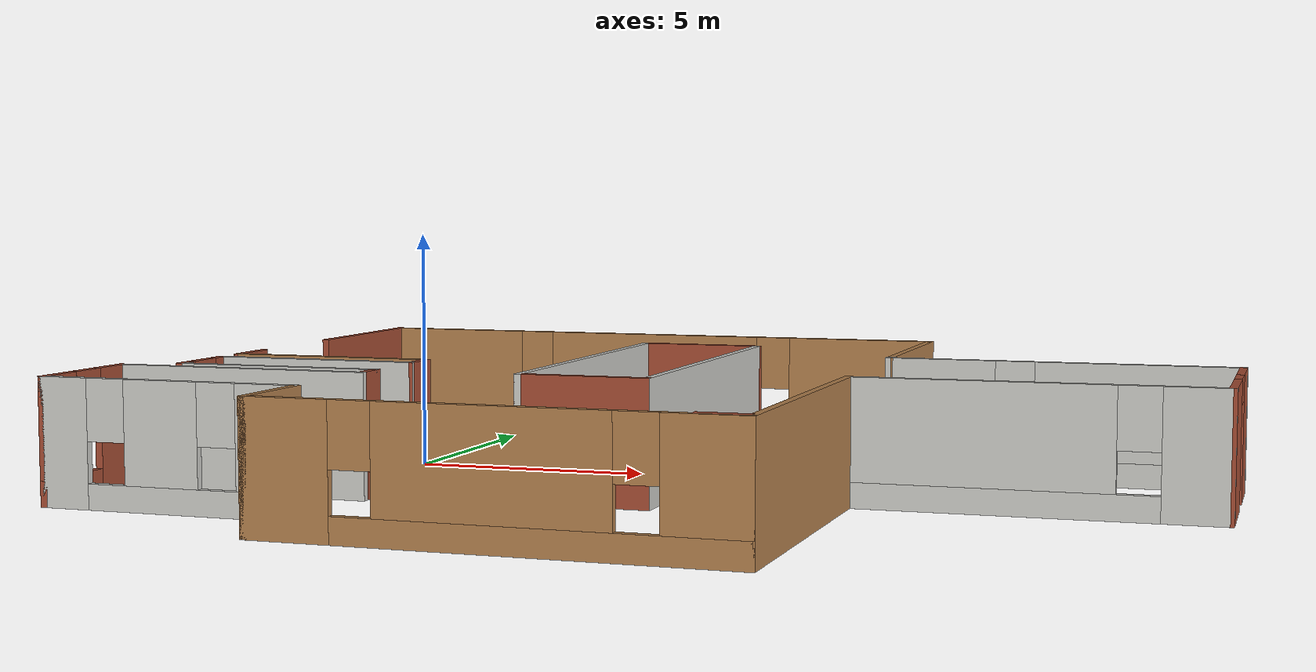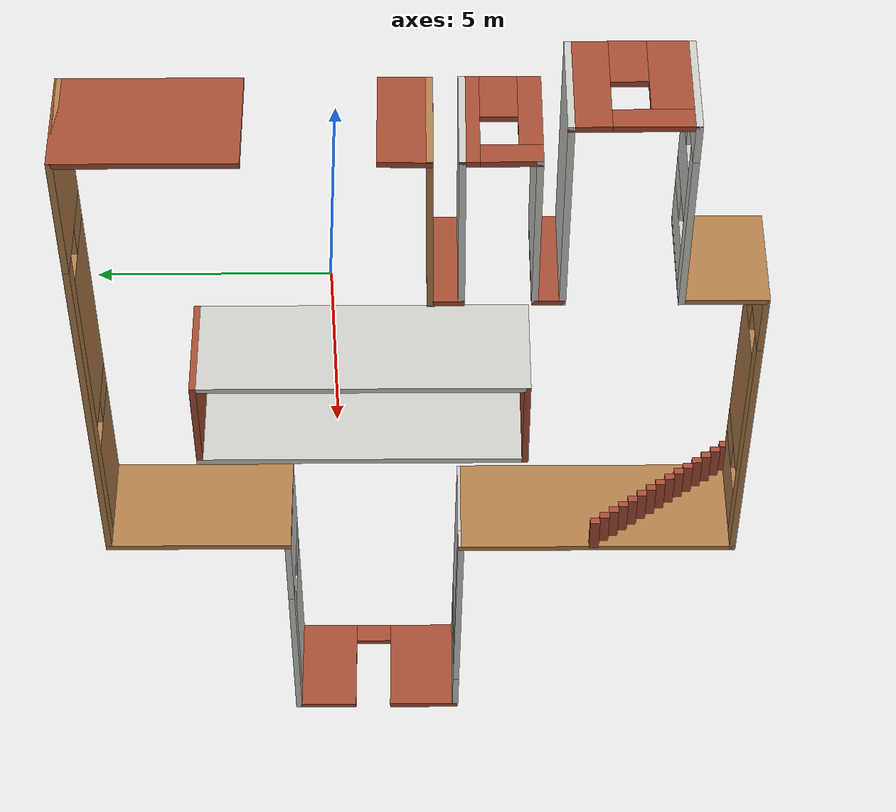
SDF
<?xml version='1.0'?>
<sdf version='1.6'>
  <model name='my1'>
    <pose frame=''>6.37403 -1.86892 0 0 -0 0</pose>
    <link name='Stairs_1'>
      <visual name='Stairs_1_Visual_0'>
        <pose frame=''>3.20471 -4.20963 0.083333 0 -0 0</pose>
        <geometry>
          <box>
            <size>1 0.233333 0.166667</size>
          </box>
        </geometry>
        <material>
          <script>
            <uri>file://media/materials/scripts/gazebo.material</uri>
            <name>Gazebo/Bricks</name>
          </script>
          <ambient>1 1 1 1</ambient>
        </material>
        <meta>
          <layer>0</layer>
        </meta>
      </visual>
      <collision name='Stairs_1_Collision_0'>
        <geometry>
          <box>
            <size>1 0.233333 0.166667</size>
          </box>
        </geometry>
        <pose frame=''>3.20471 -4.20963 0.083333 0 -0 0</pose>
      </collision>
      <visual name='Stairs_1_Visual_1'>
        <pose frame=''>3.20471 -4.44296 0.25 0 -0 0</pose>
        <geometry>
          <box>
            <size>1 0.233333 0.166667</size>
          </box>
        </geometry>
        <material>
          <script>
            <uri>file://media/materials/scripts/gazebo.material</uri>
            <name>Gazebo/Bricks</name>
          </script>
          <ambient>1 1 1 1</ambient>
        </material>
        <meta>
          <layer>0</layer>
        </meta>
      </visual>
      <collision name='Stairs_1_Collision_1'>
        <geometry>
          <box>
            <size>1 0.233333 0.166667</size>
          </box>
        </geometry>
        <pose frame=''>3.20471 -4.44296 0.25 0 -0 0</pose>
      </collision>
      <visual name='Stairs_1_Visual_2'>
        <pose frame=''>3.20471 -4.6763 0.416667 0 -0 0</pose>
        <geometry>
          <box>
            <size>1 0.233333 0.166667</size>
          </box>
        </geometry>
        <material>
          <script>
            <uri>file://media/materials/scripts/gazebo.material</uri>
            <name>Gazebo/Bricks</name>
          </script>
          <ambient>1 1 1 1</ambient>
        </material>
        <meta>
          <layer>0</layer>
        </meta>
      </visual>
      <collision name='Stairs_1_Collision_2'>
        <geometry>
          <box>
            <size>1 0.233333 0.166667</size>
          </box>
        </geometry>
        <pose frame=''>3.20471 -4.6763 0.416667 0 -0 0</pose>
      </collision>
      <visual name='Stairs_1_Visual_3'>
        <pose frame=''>3.20471 -4.90963 0.583333 0 -0 0</pose>
        <geometry>
          <box>
            <size>1 0.233333 0.166667</size>
          </box>
        </geometry>
        <material>
          <script>
            <uri>file://media/materials/scripts/gazebo.material</uri>
            <name>Gazebo/Bricks</name>
          </script>
          <ambient>1 1 1 1</ambient>
        </material>
        <meta>
          <layer>0</layer>
        </meta>
      </visual>
      <collision name='Stairs_1_Collision_3'>
        <geometry>
          <box>
            <size>1 0.233333 0.166667</size>
          </box>
        </geometry>
        <pose frame=''>3.20471 -4.90963 0.583333 0 -0 0</pose>
      </collision>
      <visual name='Stairs_1_Visual_4'>
        <pose frame=''>3.20471 -5.14296 0.75 0 -0 0</pose>
        <geometry>
          <box>
            <size>1 0.233333 0.166667</size>
          </box>
        </geometry>
        <material>
          <script>
            <uri>file://media/materials/scripts/gazebo.material</uri>
            <name>Gazebo/Bricks</name>
          </script>
          <ambient>1 1 1 1</ambient>
        </material>
        <meta>
          <layer>0</layer>
        </meta>
      </visual>
      <collision name='Stairs_1_Collision_4'>
        <geometry>
          <box>
            <size>1 0.233333 0.166667</size>
          </box>
        </geometry>
        <pose frame=''>3.20471 -5.14296 0.75 0 -0 0</pose>
      </collision>
      <visual name='Stairs_1_Visual_5'>
        <pose frame=''>3.20471 -5.3763 0.916667 0 -0 0</pose>
        <geometry>
          <box>
            <size>1 0.233333 0.166667</size>
          </box>
        </geometry>
        <material>
          <script>
            <uri>file://media/materials/scripts/gazebo.material</uri>
            <name>Gazebo/Bricks</name>
          </script>
          <ambient>1 1 1 1</ambient>
        </material>
        <meta>
          <layer>0</layer>
        </meta>
      </visual>
      <collision name='Stairs_1_Collision_5'>
        <geometry>
          <box>
            <size>1 0.233333 0.166667</size>
          </box>
        </geometry>
        <pose frame=''>3.20471 -5.3763 0.916667 0 -0 0</pose>
      </collision>
      <visual name='Stairs_1_Visual_6'>
        <pose frame=''>3.20471 -5.60963 1.08333 0 -0 0</pose>
        <geometry>
          <box>
            <size>1 0.233333 0.166667</size>
          </box>
        </geometry>
        <material>
          <script>
            <uri>file://media/materials/scripts/gazebo.material</uri>
            <name>Gazebo/Bricks</name>
          </script>
          <ambient>1 1 1 1</ambient>
        </material>
        <meta>
          <layer>0</layer>
        </meta>
      </visual>
      <collision name='Stairs_1_Collision_6'>
        <geometry>
          <box>
            <size>1 0.233333 0.166667</size>
          </box>
        </geometry>
        <pose frame=''>3.20471 -5.60963 1.08333 0 -0 0</pose>
      </collision>
      <visual name='Stairs_1_Visual_7'>
        <pose frame=''>3.20471 -5.84296 1.25 0 -0 0</pose>
        <geometry>
          <box>
            <size>1 0.233333 0.166667</size>
          </box>
        </geometry>
        <material>
          <script>
            <uri>file://media/materials/scripts/gazebo.material</uri>
            <name>Gazebo/Bricks</name>
          </script>
          <ambient>1 1 1 1</ambient>
        </material>
        <meta>
          <layer>0</layer>
        </meta>
      </visual>
      <collision name='Stairs_1_Collision_7'>
        <geometry>
          <box>
            <size>1 0.233333 0.166667</size>
          </box>
        </geometry>
        <pose frame=''>3.20471 -5.84296 1.25 0 -0 0</pose>
      </collision>
      <visual name='Stairs_1_Visual_8'>
        <pose frame=''>3.20471 -6.0763 1.41667 0 -0 0</pose>
        <geometry>
          <box>
            <size>1 0.233333 0.166667</size>
          </box>
        </geometry>
        <material>
          <script>
            <uri>file://media/materials/scripts/gazebo.material</uri>
            <name>Gazebo/Bricks</name>
          </script>
          <ambient>1 1 1 1</ambient>
        </material>
        <meta>
          <layer>0</layer>
        </meta>
      </visual>
      <collision name='Stairs_1_Collision_8'>
        <geometry>
          <box>
            <size>1 0.233333 0.166667</size>
          </box>
        </geometry>
        <pose frame=''>3.20471 -6.0763 1.41667 0 -0 0</pose>
      </collision>
      <visual name='Stairs_1_Visual_9'>
        <pose frame=''>3.20471 -6.30963 1.58333 0 -0 0</pose>
        <geometry>
          <box>
            <size>1 0.233333 0.166667</size>
          </box>
        </geometry>
        <material>
          <script>
            <uri>file://media/materials/scripts/gazebo.material</uri>
            <name>Gazebo/Bricks</name>
          </script>
          <ambient>1 1 1 1</ambient>
        </material>
        <meta>
          <layer>0</layer>
        </meta>
      </visual>
      <collision name='Stairs_1_Collision_9'>
        <geometry>
          <box>
            <size>1 0.233333 0.166667</size>
          </box>
        </geometry>
        <pose frame=''>3.20471 -6.30963 1.58333 0 -0 0</pose>
      </collision>
      <visual name='Stairs_1_Visual_10'>
        <pose frame=''>3.20471 -6.54296 1.75 0 -0 0</pose>
        <geometry>
          <box>
            <size>1 0.233333 0.166667</size>
          </box>
        </geometry>
        <material>
          <script>
            <uri>file://media/materials/scripts/gazebo.material</uri>
            <name>Gazebo/Bricks</name>
          </script>
          <ambient>1 1 1 1</ambient>
        </material>
        <meta>
          <layer>0</layer>
        </meta>
      </visual>
      <collision name='Stairs_1_Collision_10'>
        <geometry>
          <box>
            <size>1 0.233333 0.166667</size>
          </box>
        </geometry>
        <pose frame=''>3.20471 -6.54296 1.75 0 -0 0</pose>
      </collision>
      <visual name='Stairs_1_Visual_11'>
        <pose frame=''>3.20471 -6.7763 1.91667 0 -0 0</pose>
        <geometry>
          <box>
            <size>1 0.233333 0.166667</size>
          </box>
        </geometry>
        <material>
          <script>
            <uri>file://media/materials/scripts/gazebo.material</uri>
            <name>Gazebo/Bricks</name>
          </script>
          <ambient>1 1 1 1</ambient>
        </material>
        <meta>
          <layer>0</layer>
        </meta>
      </visual>
      <collision name='Stairs_1_Collision_11'>
        <geometry>
          <box>
            <size>1 0.233333 0.166667</size>
          </box>
        </geometry>
        <pose frame=''>3.20471 -6.7763 1.91667 0 -0 0</pose>
      </collision>
      <visual name='Stairs_1_Visual_12'>
        <pose frame=''>3.20471 -7.00963 2.08333 0 -0 0</pose>
        <geometry>
          <box>
            <size>1 0.233333 0.166667</size>
          </box>
        </geometry>
        <material>
          <script>
            <uri>file://media/materials/scripts/gazebo.material</uri>
            <name>Gazebo/Bricks</name>
          </script>
          <ambient>1 1 1 1</ambient>
        </material>
        <meta>
          <layer>0</layer>
        </meta>
      </visual>
      <collision name='Stairs_1_Collision_12'>
        <geometry>
          <box>
            <size>1 0.233333 0.166667</size>
          </box>
        </geometry>
        <pose frame=''>3.20471 -7.00963 2.08333 0 -0 0</pose>
      </collision>
      <visual name='Stairs_1_Visual_13'>
        <pose frame=''>3.20471 -7.24296 2.25 0 -0 0</pose>
        <geometry>
          <box>
            <size>1 0.233333 0.166667</size>
          </box>
        </geometry>
        <material>
          <script>
            <uri>file://media/materials/scripts/gazebo.material</uri>
            <name>Gazebo/Bricks</name>
          </script>
          <ambient>1 1 1 1</ambient>
        </material>
        <meta>
          <layer>0</layer>
        </meta>
      </visual>
      <collision name='Stairs_1_Collision_13'>
        <geometry>
          <box>
            <size>1 0.233333 0.166667</size>
          </box>
        </geometry>
        <pose frame=''>3.20471 -7.24296 2.25 0 -0 0</pose>
      </collision>
      <visual name='Stairs_1_Visual_14'>
        <pose frame=''>3.20471 -7.4763 2.41667 0 -0 0</pose>
        <geometry>
          <box>
            <size>1 0.233333 0.166667</size>
          </box>
        </geometry>
        <material>
          <script>
            <uri>file://media/materials/scripts/gazebo.material</uri>
            <name>Gazebo/Bricks</name>
          </script>
          <ambient>1 1 1 1</ambient>
        </material>
        <meta>
          <layer>0</layer>
        </meta>
      </visual>
      <collision name='Stairs_1_Collision_14'>
        <geometry>
          <box>
            <size>1 0.233333 0.166667</size>
          </box>
        </geometry>
        <pose frame=''>3.20471 -7.4763 2.41667 0 -0 0</pose>
      </collision>
    </link>
    <link name='Wall_13'>
      <collision name='Wall_13_Collision'>
        <geometry>
          <box>
            <size>4.5 0.15 2.5</size>
          </box>
        </geometry>
        <pose frame=''>0 0 1.25 0 -0 0</pose>
      </collision>
      <visual name='Wall_13_Visual'>
        <pose frame=''>0 0 1.25 0 -0 0</pose>
        <geometry>
          <box>
            <size>4.5 0.15 2.5</size>
          </box>
        </geometry>
        <material>
          <script>
            <uri>file://media/materials/scripts/gazebo.material</uri>
            <name>Gazebo/Wood</name>
          </script>
          <ambient>1 1 1 1</ambient>
        </material>
        <meta>
          <layer>0</layer>
        </meta>
      </visual>
      <pose frame=''>-7.54667 -0.254206 0 0 -0 3.14159</pose>
    </link>
    <link name='Wall_15'>
      <collision name='Wall_15_Collision'>
        <geometry>
          <box>
            <size>1.17118 0.15 2.5</size>
          </box>
        </geometry>
        <pose frame=''>0 0 1.25 0 -0 0</pose>
      </collision>
      <visual name='Wall_15_Visual'>
        <pose frame=''>0 0 1.25 0 -0 0</pose>
        <geometry>
          <box>
            <size>1.17118 0.15 2.5</size>
          </box>
        </geometry>
        <material>
          <script>
            <uri>file://media/materials/scripts/gazebo.material</uri>
            <name>Gazebo/Bricks</name>
          </script>
          <ambient>1 1 1 1</ambient>
        </material>
        <meta>
          <layer>0</layer>
        </meta>
      </visual>
      <pose frame=''>-9.72167 0.256343 0 0 -0 1.58367</pose>
    </link>
    <link name='Wall_18'>
      <collision name='Wall_18_Collision'>
        <geometry>
          <box>
            <size>0.829029 0.15 2.5</size>
          </box>
        </geometry>
        <pose frame=''>0 0 1.25 0 -0 0</pose>
      </collision>
      <visual name='Wall_18_Visual'>
        <pose frame=''>0 0 1.25 0 -0 0</pose>
        <geometry>
          <box>
            <size>0.829029 0.15 2.5</size>
          </box>
        </geometry>
        <material>
          <script>
            <uri>file://media/materials/scripts/gazebo.material</uri>
            <name>Gazebo/Bricks</name>
          </script>
          <ambient>1 1 1 1</ambient>
        </material>
        <meta>
          <layer>0</layer>
        </meta>
      </visual>
      <pose frame=''>-5.37167 -0.593657 0 0 0 -1.59016</pose>
    </link>
    <link name='Wall_19'>
      <collision name='Wall_19_Collision'>
        <geometry>
          <box>
            <size>4.5 0.15 2.5</size>
          </box>
        </geometry>
        <pose frame=''>0 0 1.25 0 -0 0</pose>
      </collision>
      <visual name='Wall_19_Visual'>
        <pose frame=''>0 0 1.25 0 -0 0</pose>
        <geometry>
          <box>
            <size>4.5 0.15 2.5</size>
          </box>
        </geometry>
        <material>
          <script>
            <uri>file://media/materials/scripts/gazebo.material</uri>
            <name>Gazebo/CeilingTiled</name>
          </script>
          <ambient>1 1 1 1</ambient>
        </material>
        <meta>
          <layer>0</layer>
        </meta>
      </visual>
      <pose frame=''>-7.55325 -0.933108 0 0 -0 3.14159</pose>
    </link>
    <link name='Wall_20'>
      <pose frame=''>-9.72825 -1.73311 0 0 0 -1.5708</pose>
      <visual name='Wall_20_Visual_0'>
        <pose frame=''>-0.654101 0 1.25 0 -0 0</pose>
        <geometry>
          <box>
            <size>0.441799 0.15 2.5</size>
          </box>
        </geometry>
        <material>
          <script>
            <uri>file://media/materials/scripts/gazebo.material</uri>
            <name>Gazebo/Bricks</name>
          </script>
          <ambient>1 1 1 1</ambient>
        </material>
        <meta>
          <layer>0</layer>
        </meta>
      </visual>
      <collision name='Wall_20_Collision_0'>
        <geometry>
          <box>
            <size>0.441799 0.15 2.5</size>
          </box>
        </geometry>
        <pose frame=''>-0.654101 0 1.25 0 -0 0</pose>
      </collision>
      <visual name='Wall_20_Visual_1'>
        <pose frame=''>0.220899 0 0.25 0 -0 0</pose>
        <geometry>
          <box>
            <size>1.3082 0.15 0.5</size>
          </box>
        </geometry>
        <material>
          <script>
            <uri>file://media/materials/scripts/gazebo.material</uri>
            <name>Gazebo/Bricks</name>
          </script>
          <ambient>1 1 1 1</ambient>
        </material>
        <meta>
          <layer>0</layer>
        </meta>
      </visual>
      <collision name='Wall_20_Collision_1'>
        <geometry>
          <box>
            <size>1.3082 0.15 0.5</size>
          </box>
        </geometry>
        <pose frame=''>0.220899 0 0.25 0 -0 0</pose>
      </collision>
      <visual name='Wall_20_Visual_2'>
        <pose frame=''>0.620899 0 1.5 0 -0 0</pose>
        <geometry>
          <box>
            <size>0.508201 0.15 2</size>
          </box>
        </geometry>
        <material>
          <script>
            <uri>file://media/materials/scripts/gazebo.material</uri>
            <name>Gazebo/Bricks</name>
          </script>
          <ambient>1 1 1 1</ambient>
        </material>
        <meta>
          <layer>0</layer>
        </meta>
      </visual>
      <collision name='Wall_20_Collision_2'>
        <geometry>
          <box>
            <size>0.508201 0.15 2</size>
          </box>
        </geometry>
        <pose frame=''>0.620899 0 1.5 0 -0 0</pose>
      </collision>
      <visual name='Wall_20_Visual_3'>
        <pose frame=''>-0.033201 0 1.9 0 -0 0</pose>
        <geometry>
          <box>
            <size>0.8 0.15 1.2</size>
          </box>
        </geometry>
        <material>
          <script>
            <uri>file://media/materials/scripts/gazebo.material</uri>
            <name>Gazebo/Bricks</name>
          </script>
          <ambient>1 1 1 1</ambient>
        </material>
        <meta>
          <layer>0</layer>
        </meta>
      </visual>
      <collision name='Wall_20_Collision_3'>
        <geometry>
          <box>
            <size>0.8 0.15 1.2</size>
          </box>
        </geometry>
        <pose frame=''>-0.033201 0 1.9 0 -0 0</pose>
      </collision>
    </link>
    <link name='Wall_21'>
      <collision name='Wall_21_Collision'>
        <geometry>
          <box>
            <size>4.5 0.15 2.5</size>
          </box>
        </geometry>
        <pose frame=''>0 0 1.25 0 -0 0</pose>
      </collision>
      <visual name='Wall_21_Visual'>
        <pose frame=''>0 0 1.25 0 -0 0</pose>
        <geometry>
          <box>
            <size>4.5 0.15 2.5</size>
          </box>
        </geometry>
        <material>
          <script>
            <uri>file://media/materials/scripts/gazebo.material</uri>
            <name>Gazebo/CeilingTiled</name>
          </script>
          <ambient>1 1 1 1</ambient>
        </material>
        <meta>
          <layer>0</layer>
        </meta>
      </visual>
      <pose frame=''>-7.55325 -2.53311 0 0 -0 0</pose>
    </link>
    <link name='Wall_24'>
      <collision name='Wall_24_Collision'>
        <geometry>
          <box>
            <size>0.75 0.15 2.5</size>
          </box>
        </geometry>
        <pose frame=''>0 0 1.25 0 -0 0</pose>
      </collision>
      <visual name='Wall_24_Visual'>
        <pose frame=''>0 0 1.25 0 -0 0</pose>
        <geometry>
          <box>
            <size>0.75 0.15 2.5</size>
          </box>
        </geometry>
        <material>
          <script>
            <uri>file://media/materials/scripts/gazebo.material</uri>
            <name>Gazebo/Bricks</name>
          </script>
          <ambient>1 1 1 1</ambient>
        </material>
        <meta>
          <layer>0</layer>
        </meta>
      </visual>
      <pose frame=''>-5.37825 -2.83311 0 0 0 -1.5708</pose>
    </link>
    <link name='Wall_25'>
      <collision name='Wall_25_Collision'>
        <geometry>
          <box>
            <size>5.5 0.15 2.5</size>
          </box>
        </geometry>
        <pose frame=''>0 0 1.25 0 -0 0</pose>
      </collision>
      <visual name='Wall_25_Visual'>
        <pose frame=''>0 0 1.25 0 -0 0</pose>
        <geometry>
          <box>
            <size>5.5 0.15 2.5</size>
          </box>
        </geometry>
        <material>
          <script>
            <uri>file://media/materials/scripts/gazebo.material</uri>
            <name>Gazebo/CeilingTiled</name>
          </script>
          <ambient>1 1 1 1</ambient>
        </material>
        <meta>
          <layer>0</layer>
        </meta>
      </visual>
      <pose frame=''>-8.05325 -3.13311 0 0 -0 3.14159</pose>
    </link>
    <link name='Wall_26'>
      <pose frame=''>-10.7282 -4.43311 0 0 0 -1.5708</pose>
      <visual name='Wall_26_Visual_0'>
        <pose frame=''>-0.917525 0 1.25 0 -0 0</pose>
        <geometry>
          <box>
            <size>0.914949 0.15 2.5</size>
          </box>
        </geometry>
        <material>
          <script>
            <uri>file://media/materials/scripts/gazebo.material</uri>
            <name>Gazebo/Bricks</name>
          </script>
          <ambient>1 1 1 1</ambient>
        </material>
        <meta>
          <layer>0</layer>
        </meta>
      </visual>
      <collision name='Wall_26_Collision_0'>
        <geometry>
          <box>
            <size>0.914949 0.15 2.5</size>
          </box>
        </geometry>
        <pose frame=''>-0.917525 0 1.25 0 -0 0</pose>
      </collision>
      <visual name='Wall_26_Visual_1'>
        <pose frame=''>0.457475 0 0.25 0 -0 0</pose>
        <geometry>
          <box>
            <size>1.83505 0.15 0.5</size>
          </box>
        </geometry>
        <material>
          <script>
            <uri>file://media/materials/scripts/gazebo.material</uri>
            <name>Gazebo/Bricks</name>
          </script>
          <ambient>1 1 1 1</ambient>
        </material>
        <meta>
          <layer>0</layer>
        </meta>
      </visual>
      <collision name='Wall_26_Collision_1'>
        <geometry>
          <box>
            <size>1.83505 0.15 0.5</size>
          </box>
        </geometry>
        <pose frame=''>0.457475 0 0.25 0 -0 0</pose>
      </collision>
      <visual name='Wall_26_Visual_2'>
        <pose frame=''>0.857475 0 1.5 0 -0 0</pose>
        <geometry>
          <box>
            <size>1.03505 0.15 2</size>
          </box>
        </geometry>
        <material>
          <script>
            <uri>file://media/materials/scripts/gazebo.material</uri>
            <name>Gazebo/Bricks</name>
          </script>
          <ambient>1 1 1 1</ambient>
        </material>
        <meta>
          <layer>0</layer>
        </meta>
      </visual>
      <collision name='Wall_26_Collision_2'>
        <geometry>
          <box>
            <size>1.03505 0.15 2</size>
          </box>
        </geometry>
        <pose frame=''>0.857475 0 1.5 0 -0 0</pose>
      </collision>
      <visual name='Wall_26_Visual_3'>
        <pose frame=''>-0.060051 0 1.9 0 -0 0</pose>
        <geometry>
          <box>
            <size>0.8 0.15 1.2</size>
          </box>
        </geometry>
        <material>
          <script>
            <uri>file://media/materials/scripts/gazebo.material</uri>
            <name>Gazebo/Bricks</name>
          </script>
          <ambient>1 1 1 1</ambient>
        </material>
        <meta>
          <layer>0</layer>
        </meta>
      </visual>
      <collision name='Wall_26_Collision_3'>
        <geometry>
          <box>
            <size>0.8 0.15 1.2</size>
          </box>
        </geometry>
        <pose frame=''>-0.060051 0 1.9 0 -0 0</pose>
      </collision>
    </link>
    <link name='Wall_27'>
      <pose frame=''>-8.05325 -5.73311 0 0 -0 0</pose>
      <visual name='Wall_27_Visual_0'>
        <pose frame=''>-2.22077 0 1.25 0 -0 0</pose>
        <geometry>
          <box>
            <size>1.05847 0.15 2.5</size>
          </box>
        </geometry>
        <material>
          <script>
            <uri>file://media/materials/scripts/gazebo.material</uri>
            <name>Gazebo/CeilingTiled</name>
          </script>
          <ambient>1 1 1 1</ambient>
        </material>
        <meta>
          <layer>0</layer>
        </meta>
      </visual>
      <collision name='Wall_27_Collision_0'>
        <geometry>
          <box>
            <size>1.05847 0.15 2.5</size>
          </box>
        </geometry>
        <pose frame=''>-2.22077 0 1.25 0 -0 0</pose>
      </collision>
      <visual name='Wall_27_Visual_1'>
        <pose frame=''>0.529234 0 0.25 0 -0 0</pose>
        <geometry>
          <box>
            <size>4.44153 0.15 0.5</size>
          </box>
        </geometry>
        <material>
          <script>
            <uri>file://media/materials/scripts/gazebo.material</uri>
            <name>Gazebo/CeilingTiled</name>
          </script>
          <ambient>1 1 1 1</ambient>
        </material>
        <meta>
          <layer>0</layer>
        </meta>
      </visual>
      <collision name='Wall_27_Collision_1'>
        <geometry>
          <box>
            <size>4.44153 0.15 0.5</size>
          </box>
        </geometry>
        <pose frame=''>0.529234 0 0.25 0 -0 0</pose>
      </collision>
      <visual name='Wall_27_Visual_2'>
        <pose frame=''>-0.116533 0 1.5 0 -0 0</pose>
        <geometry>
          <box>
            <size>1.55 0.15 2</size>
          </box>
        </geometry>
        <material>
          <script>
            <uri>file://media/materials/scripts/gazebo.material</uri>
            <name>Gazebo/CeilingTiled</name>
          </script>
          <ambient>1 1 1 1</ambient>
        </material>
        <meta>
          <layer>0</layer>
        </meta>
      </visual>
      <collision name='Wall_27_Collision_2'>
        <geometry>
          <box>
            <size>1.55 0.15 2</size>
          </box>
        </geometry>
        <pose frame=''>-0.116533 0 1.5 0 -0 0</pose>
      </collision>
      <visual name='Wall_27_Visual_3'>
        <pose frame=''>2.10423 0 1.5 0 -0 0</pose>
        <geometry>
          <box>
            <size>1.29153 0.15 2</size>
          </box>
        </geometry>
        <material>
          <script>
            <uri>file://media/materials/scripts/gazebo.material</uri>
            <name>Gazebo/CeilingTiled</name>
          </script>
          <ambient>1 1 1 1</ambient>
        </material>
        <meta>
          <layer>0</layer>
        </meta>
      </visual>
      <collision name='Wall_27_Collision_3'>
        <geometry>
          <box>
            <size>1.29153 0.15 2</size>
          </box>
        </geometry>
        <pose frame=''>2.10423 0 1.5 0 -0 0</pose>
      </collision>
      <visual name='Wall_27_Visual_4'>
        <pose frame=''>-1.29153 0 1.9 0 -0 0</pose>
        <geometry>
          <box>
            <size>0.8 0.15 1.2</size>
          </box>
        </geometry>
        <material>
          <script>
            <uri>file://media/materials/scripts/gazebo.material</uri>
            <name>Gazebo/CeilingTiled</name>
          </script>
          <ambient>1 1 1 1</ambient>
        </material>
        <meta>
          <layer>0</layer>
        </meta>
      </visual>
      <collision name='Wall_27_Collision_4'>
        <geometry>
          <box>
            <size>0.8 0.15 1.2</size>
          </box>
        </geometry>
        <pose frame=''>-1.29153 0 1.9 0 -0 0</pose>
      </collision>
      <visual name='Wall_27_Visual_5'>
        <pose frame=''>1.05847 0 1.9 0 -0 0</pose>
        <geometry>
          <box>
            <size>0.8 0.15 1.2</size>
          </box>
        </geometry>
        <material>
          <script>
            <uri>file://media/materials/scripts/gazebo.material</uri>
            <name>Gazebo/CeilingTiled</name>
          </script>
          <ambient>1 1 1 1</ambient>
        </material>
        <meta>
          <layer>0</layer>
        </meta>
      </visual>
      <collision name='Wall_27_Collision_5'>
        <geometry>
          <box>
            <size>0.8 0.15 1.2</size>
          </box>
        </geometry>
        <pose frame=''>1.05847 0 1.9 0 -0 0</pose>
      </collision>
    </link>
    <link name='Wall_30'>
      <collision name='Wall_30_Collision'>
        <geometry>
          <box>
            <size>2 0.15 2.5</size>
          </box>
        </geometry>
        <pose frame=''>0 0 1.25 0 -0 0</pose>
      </collision>
      <visual name='Wall_30_Visual'>
        <pose frame=''>0 0 1.25 0 -0 0</pose>
        <geometry>
          <box>
            <size>2 0.15 2.5</size>
          </box>
        </geometry>
        <material>
          <script>
            <uri>file://media/materials/scripts/gazebo.material</uri>
            <name>Gazebo/Wood</name>
          </script>
          <ambient>1 1 1 1</ambient>
        </material>
        <meta>
          <layer>0</layer>
        </meta>
      </visual>
      <pose frame=''>-5.37825 -6.65811 0 0 0 -1.5708</pose>
    </link>
    <link name='Wall_31'>
      <pose frame=''>-0.828247 -7.58311 0 0 -0 0</pose>
      <visual name='Wall_31_Visual_0'>
        <pose frame=''>-3.76785 0 1.25 0 -0 0</pose>
        <geometry>
          <box>
            <size>1.71431 0.15 2.5</size>
          </box>
        </geometry>
        <material>
          <script>
            <uri>file://media/materials/scripts/gazebo.material</uri>
            <name>Gazebo/Wood</name>
          </script>
          <ambient>1 1 1 1</ambient>
        </material>
        <meta>
          <layer>0</layer>
        </meta>
      </visual>
      <collision name='Wall_31_Collision_0'>
        <geometry>
          <box>
            <size>1.71431 0.15 2.5</size>
          </box>
        </geometry>
        <pose frame=''>-3.76785 0 1.25 0 -0 0</pose>
      </collision>
      <visual name='Wall_31_Visual_1'>
        <pose frame=''>0.857154 0 0.25 0 -0 0</pose>
        <geometry>
          <box>
            <size>7.53569 0.15 0.5</size>
          </box>
        </geometry>
        <material>
          <script>
            <uri>file://media/materials/scripts/gazebo.material</uri>
            <name>Gazebo/Wood</name>
          </script>
          <ambient>1 1 1 1</ambient>
        </material>
        <meta>
          <layer>0</layer>
        </meta>
      </visual>
      <collision name='Wall_31_Collision_1'>
        <geometry>
          <box>
            <size>7.53569 0.15 0.5</size>
          </box>
        </geometry>
        <pose frame=''>0.857154 0 0.25 0 -0 0</pose>
      </collision>
      <visual name='Wall_31_Visual_2'>
        <pose frame=''>0.056227 0 1.5 0 -0 0</pose>
        <geometry>
          <box>
            <size>4.33384 0.15 2</size>
          </box>
        </geometry>
        <material>
          <script>
            <uri>file://media/materials/scripts/gazebo.material</uri>
            <name>Gazebo/Wood</name>
          </script>
          <ambient>1 1 1 1</ambient>
        </material>
        <meta>
          <layer>0</layer>
        </meta>
      </visual>
      <collision name='Wall_31_Collision_2'>
        <geometry>
          <box>
            <size>4.33384 0.15 2</size>
          </box>
        </geometry>
        <pose frame=''>0.056227 0 1.5 0 -0 0</pose>
      </collision>
      <visual name='Wall_31_Visual_3'>
        <pose frame=''>3.82407 0 1.5 0 -0 0</pose>
        <geometry>
          <box>
            <size>1.60185 0.15 2</size>
          </box>
        </geometry>
        <material>
          <script>
            <uri>file://media/materials/scripts/gazebo.material</uri>
            <name>Gazebo/Wood</name>
          </script>
          <ambient>1 1 1 1</ambient>
        </material>
        <meta>
          <layer>0</layer>
        </meta>
      </visual>
      <collision name='Wall_31_Collision_3'>
        <geometry>
          <box>
            <size>1.60185 0.15 2</size>
          </box>
        </geometry>
        <pose frame=''>3.82407 0 1.5 0 -0 0</pose>
      </collision>
      <visual name='Wall_31_Visual_4'>
        <pose frame=''>-2.51069 0 1.9 0 -0 0</pose>
        <geometry>
          <box>
            <size>0.8 0.15 1.2</size>
          </box>
        </geometry>
        <material>
          <script>
            <uri>file://media/materials/scripts/gazebo.material</uri>
            <name>Gazebo/Wood</name>
          </script>
          <ambient>1 1 1 1</ambient>
        </material>
        <meta>
          <layer>0</layer>
        </meta>
      </visual>
      <collision name='Wall_31_Collision_4'>
        <geometry>
          <box>
            <size>0.8 0.15 1.2</size>
          </box>
        </geometry>
        <pose frame=''>-2.51069 0 1.9 0 -0 0</pose>
      </collision>
      <visual name='Wall_31_Visual_5'>
        <pose frame=''>2.62315 0 1.9 0 -0 0</pose>
        <geometry>
          <box>
            <size>0.8 0.15 1.2</size>
          </box>
        </geometry>
        <material>
          <script>
            <uri>file://media/materials/scripts/gazebo.material</uri>
            <name>Gazebo/Wood</name>
          </script>
          <ambient>1 1 1 1</ambient>
        </material>
        <meta>
          <layer>0</layer>
        </meta>
      </visual>
      <collision name='Wall_31_Collision_5'>
        <geometry>
          <box>
            <size>0.8 0.15 1.2</size>
          </box>
        </geometry>
        <pose frame=''>2.62315 0 1.9 0 -0 0</pose>
      </collision>
    </link>
    <link name='Wall_32'>
      <collision name='Wall_32_Collision'>
        <geometry>
          <box>
            <size>6.75 0.15 2.5</size>
          </box>
        </geometry>
        <pose frame=''>0 0 1.25 0 -0 0</pose>
      </collision>
      <visual name='Wall_32_Visual'>
        <pose frame=''>0 0 1.25 0 -0 0</pose>
        <geometry>
          <box>
            <size>6.75 0.15 2.5</size>
          </box>
        </geometry>
        <material>
          <script>
            <uri>file://media/materials/scripts/gazebo.material</uri>
            <name>Gazebo/Wood</name>
          </script>
          <ambient>1 1 1 1</ambient>
        </material>
        <meta>
          <layer>0</layer>
        </meta>
      </visual>
      <pose frame=''>3.72175 -4.28311 0 0 -0 1.5708</pose>
    </link>
    <link name='Wall_34'>
      <collision name='Wall_34_Collision'>
        <geometry>
          <box>
            <size>4 0.15 2.5</size>
          </box>
        </geometry>
        <pose frame=''>0 0 1.25 0 -0 0</pose>
      </collision>
      <visual name='Wall_34_Visual'>
        <pose frame=''>0 0 1.25 0 -0 0</pose>
        <geometry>
          <box>
            <size>4 0.15 2.5</size>
          </box>
        </geometry>
        <material>
          <script>
            <uri>file://media/materials/scripts/gazebo.material</uri>
            <name>Gazebo/Bricks</name>
          </script>
          <ambient>1 1 1 1</ambient>
        </material>
        <meta>
          <layer>0</layer>
        </meta>
      </visual>
      <pose frame=''>-9.72299 5.65811 0 0 -0 1.5708</pose>
    </link>
    <link name='Wall_35'>
      <pose frame=''>-3.04799 7.58311 0 0 -0 0</pose>
      <visual name='Wall_35_Visual_0'>
        <pose frame=''>-5.05049 0 1.25 0 -0 0</pose>
        <geometry>
          <box>
            <size>3.39903 0.15 2.5</size>
          </box>
        </geometry>
        <material>
          <script>
            <uri>file://media/materials/scripts/gazebo.material</uri>
            <name>Gazebo/Wood</name>
          </script>
          <ambient>1 1 1 1</ambient>
        </material>
        <meta>
          <layer>0</layer>
        </meta>
      </visual>
      <collision name='Wall_35_Collision_0'>
        <geometry>
          <box>
            <size>3.39903 0.15 2.5</size>
          </box>
        </geometry>
        <pose frame=''>-5.05049 0 1.25 0 -0 0</pose>
      </collision>
      <visual name='Wall_35_Visual_1'>
        <pose frame=''>1.69951 0 0.25 0 -0 0</pose>
        <geometry>
          <box>
            <size>10.101 0.15 0.5</size>
          </box>
        </geometry>
        <material>
          <script>
            <uri>file://media/materials/scripts/gazebo.material</uri>
            <name>Gazebo/Wood</name>
          </script>
          <ambient>1 1 1 1</ambient>
        </material>
        <meta>
          <layer>0</layer>
        </meta>
      </visual>
      <collision name='Wall_35_Collision_1'>
        <geometry>
          <box>
            <size>10.101 0.15 0.5</size>
          </box>
        </geometry>
        <pose frame=''>1.69951 0 0.25 0 -0 0</pose>
      </collision>
      <visual name='Wall_35_Visual_2'>
        <pose frame=''>0.01495 0 1.5 0 -0 0</pose>
        <geometry>
          <box>
            <size>5.13185 0.15 2</size>
          </box>
        </geometry>
        <material>
          <script>
            <uri>file://media/materials/scripts/gazebo.material</uri>
            <name>Gazebo/Wood</name>
          </script>
          <ambient>1 1 1 1</ambient>
        </material>
        <meta>
          <layer>0</layer>
        </meta>
      </visual>
      <collision name='Wall_35_Collision_2'>
        <geometry>
          <box>
            <size>5.13185 0.15 2</size>
          </box>
        </geometry>
        <pose frame=''>0.01495 0 1.5 0 -0 0</pose>
      </collision>
      <visual name='Wall_35_Visual_3'>
        <pose frame=''>5.06544 0 1.5 0 -0 0</pose>
        <geometry>
          <box>
            <size>3.36913 0.15 2</size>
          </box>
        </geometry>
        <material>
          <script>
            <uri>file://media/materials/scripts/gazebo.material</uri>
            <name>Gazebo/Wood</name>
          </script>
          <ambient>1 1 1 1</ambient>
        </material>
        <meta>
          <layer>0</layer>
        </meta>
      </visual>
      <collision name='Wall_35_Collision_3'>
        <geometry>
          <box>
            <size>3.36913 0.15 2</size>
          </box>
        </geometry>
        <pose frame=''>5.06544 0 1.5 0 -0 0</pose>
      </collision>
      <visual name='Wall_35_Visual_4'>
        <pose frame=''>-2.95097 0 1.9 0 -0 0</pose>
        <geometry>
          <box>
            <size>0.8 0.15 1.2</size>
          </box>
        </geometry>
        <material>
          <script>
            <uri>file://media/materials/scripts/gazebo.material</uri>
            <name>Gazebo/Wood</name>
          </script>
          <ambient>1 1 1 1</ambient>
        </material>
        <meta>
          <layer>0</layer>
        </meta>
      </visual>
      <collision name='Wall_35_Collision_4'>
        <geometry>
          <box>
            <size>0.8 0.15 1.2</size>
          </box>
        </geometry>
        <pose frame=''>-2.95097 0 1.9 0 -0 0</pose>
      </collision>
      <visual name='Wall_35_Visual_5'>
        <pose frame=''>2.98087 0 1.9 0 -0 0</pose>
        <geometry>
          <box>
            <size>0.8 0.15 1.2</size>
          </box>
        </geometry>
        <material>
          <script>
            <uri>file://media/materials/scripts/gazebo.material</uri>
            <name>Gazebo/Wood</name>
          </script>
          <ambient>1 1 1 1</ambient>
        </material>
        <meta>
          <layer>0</layer>
        </meta>
      </visual>
      <collision name='Wall_35_Collision_5'>
        <geometry>
          <box>
            <size>0.8 0.15 1.2</size>
          </box>
        </geometry>
        <pose frame=''>2.98087 0 1.9 0 -0 0</pose>
      </collision>
    </link>
    <link name='Wall_36'>
      <collision name='Wall_36_Collision'>
        <geometry>
          <box>
            <size>4.5 0.15 2.5</size>
          </box>
        </geometry>
        <pose frame=''>0 0 1.25 0 -0 0</pose>
      </collision>
      <visual name='Wall_36_Visual'>
        <pose frame=''>0 0 1.25 0 -0 0</pose>
        <geometry>
          <box>
            <size>4.5 0.15 2.5</size>
          </box>
        </geometry>
        <material>
          <script>
            <uri>file://media/materials/scripts/gazebo.material</uri>
            <name>Gazebo/Wood</name>
          </script>
          <ambient>1 1 1 1</ambient>
        </material>
        <meta>
          <layer>0</layer>
        </meta>
      </visual>
      <pose frame=''>3.62701 5.40811 0 0 0 -1.5708</pose>
    </link>
    <link name='Wall_37'>
      <pose frame=''>7.17701 3.23311 0 0 -0 0</pose>
      <visual name='Wall_37_Visual_0'>
        <pose frame=''>-2.48244 0 1.25 0 -0 0</pose>
        <geometry>
          <box>
            <size>2.28512 0.15 2.5</size>
          </box>
        </geometry>
        <material>
          <script>
            <uri>file://media/materials/scripts/gazebo.material</uri>
            <name>Gazebo/CeilingTiled</name>
          </script>
          <ambient>1 1 1 1</ambient>
        </material>
        <meta>
          <layer>0</layer>
        </meta>
      </visual>
      <collision name='Wall_37_Collision_0'>
        <geometry>
          <box>
            <size>2.28512 0.15 2.5</size>
          </box>
        </geometry>
        <pose frame=''>-2.48244 0 1.25 0 -0 0</pose>
      </collision>
      <visual name='Wall_37_Visual_1'>
        <pose frame=''>1.14256 0 0.25 0 -0 0</pose>
        <geometry>
          <box>
            <size>4.96488 0.15 0.5</size>
          </box>
        </geometry>
        <material>
          <script>
            <uri>file://media/materials/scripts/gazebo.material</uri>
            <name>Gazebo/CeilingTiled</name>
          </script>
          <ambient>1 1 1 1</ambient>
        </material>
        <meta>
          <layer>0</layer>
        </meta>
      </visual>
      <collision name='Wall_37_Collision_1'>
        <geometry>
          <box>
            <size>4.96488 0.15 0.5</size>
          </box>
        </geometry>
        <pose frame=''>1.14256 0 0.25 0 -0 0</pose>
      </collision>
      <visual name='Wall_37_Visual_2'>
        <pose frame=''>1.54256 0 1.5 0 -0 0</pose>
        <geometry>
          <box>
            <size>4.16488 0.15 2</size>
          </box>
        </geometry>
        <material>
          <script>
            <uri>file://media/materials/scripts/gazebo.material</uri>
            <name>Gazebo/CeilingTiled</name>
          </script>
          <ambient>1 1 1 1</ambient>
        </material>
        <meta>
          <layer>0</layer>
        </meta>
      </visual>
      <collision name='Wall_37_Collision_2'>
        <geometry>
          <box>
            <size>4.16488 0.15 2</size>
          </box>
        </geometry>
        <pose frame=''>1.54256 0 1.5 0 -0 0</pose>
      </collision>
      <visual name='Wall_37_Visual_3'>
        <pose frame=''>-0.93988 0 1.9 0 -0 0</pose>
        <geometry>
          <box>
            <size>0.8 0.15 1.2</size>
          </box>
        </geometry>
        <material>
          <script>
            <uri>file://media/materials/scripts/gazebo.material</uri>
            <name>Gazebo/CeilingTiled</name>
          </script>
          <ambient>1 1 1 1</ambient>
        </material>
        <meta>
          <layer>0</layer>
        </meta>
      </visual>
      <collision name='Wall_37_Collision_3'>
        <geometry>
          <box>
            <size>0.8 0.15 1.2</size>
          </box>
        </geometry>
        <pose frame=''>-0.93988 0 1.9 0 -0 0</pose>
      </collision>
    </link>
    <link name='Wall_38'>
      <pose frame=''>10.727 1.18311 0 0 0 -1.5708</pose>
      <visual name='Wall_38_Visual_0'>
        <pose frame=''>-1.33889 0 1.25 0 -0 0</pose>
        <geometry>
          <box>
            <size>1.57222 0.15 2.5</size>
          </box>
        </geometry>
        <material>
          <script>
            <uri>file://media/materials/scripts/gazebo.material</uri>
            <name>Gazebo/Bricks</name>
          </script>
          <ambient>1 1 1 1</ambient>
        </material>
        <meta>
          <layer>0</layer>
        </meta>
      </visual>
      <collision name='Wall_38_Collision_0'>
        <geometry>
          <box>
            <size>1.57222 0.15 2.5</size>
          </box>
        </geometry>
        <pose frame=''>-1.33889 0 1.25 0 -0 0</pose>
      </collision>
      <visual name='Wall_38_Visual_1'>
        <pose frame=''>1.23611 0 1.25 0 -0 0</pose>
        <geometry>
          <box>
            <size>1.77778 0.15 2.5</size>
          </box>
        </geometry>
        <material>
          <script>
            <uri>file://media/materials/scripts/gazebo.material</uri>
            <name>Gazebo/Bricks</name>
          </script>
          <ambient>1 1 1 1</ambient>
        </material>
        <meta>
          <layer>0</layer>
        </meta>
      </visual>
      <collision name='Wall_38_Collision_1'>
        <geometry>
          <box>
            <size>1.77778 0.15 2.5</size>
          </box>
        </geometry>
        <pose frame=''>1.23611 0 1.25 0 -0 0</pose>
      </collision>
      <visual name='Wall_38_Visual_2'>
        <pose frame=''>-0.102782 0 2.25 0 -0 0</pose>
        <geometry>
          <box>
            <size>0.9 0.15 0.5</size>
          </box>
        </geometry>
        <material>
          <script>
            <uri>file://media/materials/scripts/gazebo.material</uri>
            <name>Gazebo/Bricks</name>
          </script>
          <ambient>1 1 1 1</ambient>
        </material>
        <meta>
          <layer>0</layer>
        </meta>
      </visual>
      <collision name='Wall_38_Collision_2'>
        <geometry>
          <box>
            <size>0.9 0.15 0.5</size>
          </box>
        </geometry>
        <pose frame=''>-0.102782 0 2.25 0 -0 0</pose>
      </collision>
    </link>
    <link name='Wall_39'>
      <pose frame=''>7.22438 -0.925 0 0 0 -3.125</pose>
      <visual name='Wall_39_Visual_0'>
        <pose frame=''>-2.9313 0 1.25 0 -0 0</pose>
        <geometry>
          <box>
            <size>1.29363 0.15 2.5</size>
          </box>
        </geometry>
        <material>
          <script>
            <uri>file://media/materials/scripts/gazebo.material</uri>
            <name>Gazebo/CeilingTiled</name>
          </script>
          <ambient>1 1 1 1</ambient>
        </material>
        <meta>
          <layer>0</layer>
        </meta>
      </visual>
      <collision name='Wall_39_Collision_0'>
        <geometry>
          <box>
            <size>1.29363 0.15 2.5</size>
          </box>
        </geometry>
        <pose frame=''>-2.9313 0 1.25 0 -0 0</pose>
      </collision>
      <visual name='Wall_39_Visual_1'>
        <pose frame=''>0.646816 0 0.25 0 -0 0</pose>
        <geometry>
          <box>
            <size>5.86259 0.15 0.5</size>
          </box>
        </geometry>
        <material>
          <script>
            <uri>file://media/materials/scripts/gazebo.material</uri>
            <name>Gazebo/CeilingTiled</name>
          </script>
          <ambient>1 1 1 1</ambient>
        </material>
        <meta>
          <layer>0</layer>
        </meta>
      </visual>
      <collision name='Wall_39_Collision_1'>
        <geometry>
          <box>
            <size>5.86259 0.15 0.5</size>
          </box>
        </geometry>
        <pose frame=''>0.646816 0 0.25 0 -0 0</pose>
      </collision>
      <visual name='Wall_39_Visual_2'>
        <pose frame=''>1.04682 0 1.5 0 -0 0</pose>
        <geometry>
          <box>
            <size>5.06259 0.15 2</size>
          </box>
        </geometry>
        <material>
          <script>
            <uri>file://media/materials/scripts/gazebo.material</uri>
            <name>Gazebo/CeilingTiled</name>
          </script>
          <ambient>1 1 1 1</ambient>
        </material>
        <meta>
          <layer>0</layer>
        </meta>
      </visual>
      <collision name='Wall_39_Collision_2'>
        <geometry>
          <box>
            <size>5.06259 0.15 2</size>
          </box>
        </geometry>
        <pose frame=''>1.04682 0 1.5 0 -0 0</pose>
      </collision>
      <visual name='Wall_39_Visual_3'>
        <pose frame=''>-1.88448 0 1.9 0 -0 0</pose>
        <geometry>
          <box>
            <size>0.8 0.15 1.2</size>
          </box>
        </geometry>
        <material>
          <script>
            <uri>file://media/materials/scripts/gazebo.material</uri>
            <name>Gazebo/CeilingTiled</name>
          </script>
          <ambient>1 1 1 1</ambient>
        </material>
        <meta>
          <layer>0</layer>
        </meta>
      </visual>
      <collision name='Wall_39_Collision_3'>
        <geometry>
          <box>
            <size>0.8 0.15 1.2</size>
          </box>
        </geometry>
        <pose frame=''>-1.88448 0 1.9 0 -0 0</pose>
      </collision>
    </link>
    <link name='Wall_41'>
      <collision name='Wall_41_Collision'>
        <geometry>
          <box>
            <size>7.75 0.15 2.5</size>
          </box>
        </geometry>
        <pose frame=''>0 0 1.25 0 -0 0</pose>
      </collision>
      <visual name='Wall_41_Visual'>
        <pose frame=''>0 0 1.25 0 -0 0</pose>
        <geometry>
          <box>
            <size>7.75 0.15 2.5</size>
          </box>
        </geometry>
        <material>
          <script>
            <uri>file://media/materials/scripts/gazebo.material</uri>
            <name>Gazebo/CeilingTiled</name>
          </script>
          <ambient>1 1 1 1</ambient>
        </material>
        <meta>
          <layer>0</layer>
        </meta>
      </visual>
      <pose frame=''>-2.38133 1.34292 0 0 0 -1.5708</pose>
    </link>
    <link name='Wall_42'>
      <collision name='Wall_42_Collision'>
        <geometry>
          <box>
            <size>2.75 0.15 2.5</size>
          </box>
        </geometry>
        <pose frame=''>0 0 1.25 0 -0 0</pose>
      </collision>
      <visual name='Wall_42_Visual'>
        <pose frame=''>0 0 1.25 0 -0 0</pose>
        <geometry>
          <box>
            <size>2.75 0.15 2.5</size>
          </box>
        </geometry>
        <material>
          <script>
            <uri>file://media/materials/scripts/gazebo.material</uri>
            <name>Gazebo/Bricks</name>
          </script>
          <ambient>1 1 1 1</ambient>
        </material>
        <meta>
          <layer>0</layer>
        </meta>
      </visual>
      <pose frame=''>-1.08133 -2.45708 0 0 -0 0</pose>
    </link>
    <link name='Wall_43'>
      <collision name='Wall_43_Collision'>
        <geometry>
          <box>
            <size>7.75 0.15 2.5</size>
          </box>
        </geometry>
        <pose frame=''>0 0 1.25 0 -0 0</pose>
      </collision>
      <visual name='Wall_43_Visual'>
        <pose frame=''>0 0 1.25 0 -0 0</pose>
        <geometry>
          <box>
            <size>7.75 0.15 2.5</size>
          </box>
        </geometry>
        <material>
          <script>
            <uri>file://media/materials/scripts/gazebo.material</uri>
            <name>Gazebo/CeilingTiled</name>
          </script>
          <ambient>1 1 1 1</ambient>
        </material>
        <meta>
          <layer>0</layer>
        </meta>
      </visual>
      <pose frame=''>0.218668 1.34292 0 0 -0 1.5708</pose>
    </link>
    <link name='Wall_44'>
      <collision name='Wall_44_Collision'>
        <geometry>
          <box>
            <size>2.75 0.15 2.5</size>
          </box>
        </geometry>
        <pose frame=''>0 0 1.25 0 -0 0</pose>
      </collision>
      <visual name='Wall_44_Visual'>
        <pose frame=''>0 0 1.25 0 -0 0</pose>
        <geometry>
          <box>
            <size>2.75 0.15 2.5</size>
          </box>
        </geometry>
        <material>
          <script>
            <uri>file://media/materials/scripts/gazebo.material</uri>
            <name>Gazebo/Bricks</name>
          </script>
          <ambient>1 1 1 1</ambient>
        </material>
        <meta>
          <layer>0</layer>
        </meta>
      </visual>
      <pose frame=''>-1.08133 5.14292 0 0 -0 3.14159</pose>
    </link>
    <static>1</static>
  </model>
</sdf>
